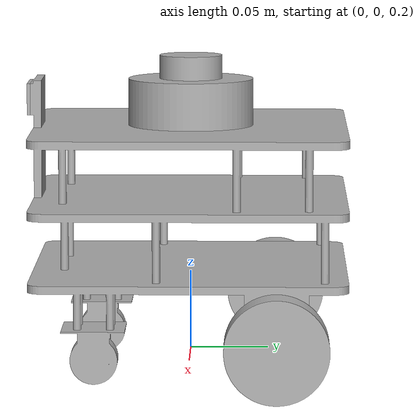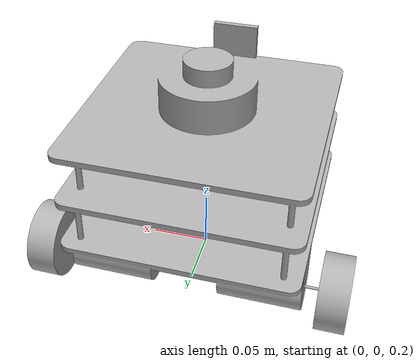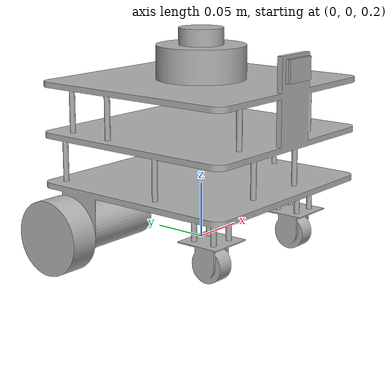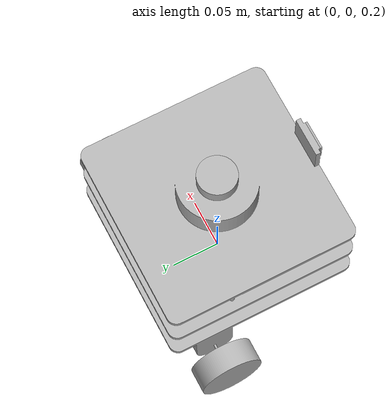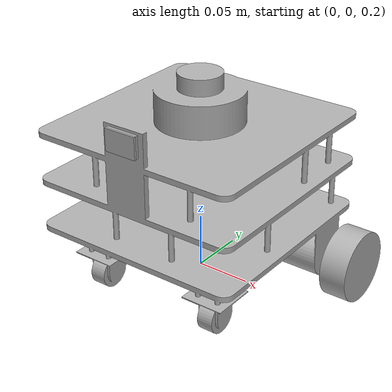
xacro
<?xml version="1.0" ?>
<robot name="bbot" xmlns:xacro="http://www.ros.org/wiki/xacro">

<xacro:include filename="$(find bbot_description)/urdf/materials.xacro" />
<xacro:include filename="$(find bbot_description)/urdf/bbot.trans" />
<xacro:include filename="$(find bbot_description)/urdf/bbot.gazebo" />
<xacro:include filename="$(find bbot_description)/urdf/bbot_plugins.xacro" />

<link name="base_footprint" />

<link name="base_link">
  <inertial>
    <origin xyz="2.1135272500541458e-15 0.0063142431636586584 0.10298851522133046" rpy="0 0 0"/>
    <mass value="1.0491220696897063"/>
    <inertia ixx="0.006007" iyy="0.006187" izz="0.00631" ixy="0.0" iyz="0.000632" ixz="0.0"/>
  </inertial>
  <visual>
    <origin xyz="0 0 0" rpy="0 0 0"/>
    <geometry>
      <mesh filename="file://$(find bbot_description)/meshes/base_link.stl" scale="0.001 0.001 0.001"/>
    </geometry>
    <material name="silver"/>
  </visual>
  <collision>
    <origin xyz="0 0 0" rpy="0 0 0"/>
    <geometry>
      <mesh filename="file://$(find bbot_description)/meshes/base_link.stl" scale="0.001 0.001 0.001"/>
    </geometry>
  </collision>
</link>

<link name="lidar">
  <inertial>
    <origin xyz="0.0 0.0 0.007500000000000034" rpy="0 0 0"/>
    <mass value="0.02686061718819272"/>
    <inertia ixx="3e-06" iyy="3e-06" izz="5e-06" ixy="-0.0" iyz="0.0" ixz="0.0"/>
  </inertial>
  <visual>
    <origin xyz="-0.0 -0.0 -0.1875" rpy="0 0 0"/>
    <geometry>
      <mesh filename="file://$(find bbot_description)/meshes/lidar_1.stl" scale="0.001 0.001 0.001"/>
    </geometry>
    <material name="silver"/>
  </visual>
  <collision>
    <origin xyz="-0.0 -0.0 -0.1875" rpy="0 0 0"/>
    <geometry>
      <mesh filename="file://$(find bbot_description)/meshes/lidar_1.stl" scale="0.001 0.001 0.001"/>
    </geometry>
  </collision>
</link>

<link name="leftwheel">
  <inertial>
    <origin xyz="0.012499999999999997 8.195638681596229e-10 5.66244127975235e-10" rpy="0 0 0"/>
    <mass value="0.11821469543761903"/>
    <inertia ixx="6.2e-05" iyy="3.7e-05" izz="3.7e-05" ixy="-0.0" iyz="0.0" ixz="-0.0"/>
  </inertial>
  <visual>
    <origin xyz="-0.1125 -0.055 -0.0325" rpy="0 0 0"/>
    <geometry>
      <mesh filename="file://$(find bbot_description)/meshes/leftwheel_1.stl" scale="0.001 0.001 0.001"/>
    </geometry>
    <material name="silver"/>
  </visual>
  <collision>
    <origin xyz="-0.1125 -0.055 -0.0325" rpy="0 0 0"/>
    <geometry>
      <mesh filename="file://$(find bbot_description)/meshes/leftwheel_1.stl" scale="0.001 0.001 0.001"/>
    </geometry>
  </collision>
</link>

<link name="rigthwheel">
  <inertial>
    <origin xyz="-0.012499999999999997 8.195638681596229e-10 5.66244127975235e-10" rpy="0 0 0"/>
    <mass value="0.11821469543761906"/>
    <inertia ixx="6.2e-05" iyy="3.7e-05" izz="3.7e-05" ixy="-0.0" iyz="0.0" ixz="0.0"/>
  </inertial>
  <visual>
    <origin xyz="0.1125 -0.055 -0.0325" rpy="0 0 0"/>
    <geometry>
      <mesh filename="file://$(find bbot_description)/meshes/rigthwheel_1.stl" scale="0.001 0.001 0.001"/>
    </geometry>
    <material name="silver"/>
  </visual>
  <collision>
    <origin xyz="0.1125 -0.055 -0.0325" rpy="0 0 0"/>
    <geometry>
      <mesh filename="file://$(find bbot_description)/meshes/rigthwheel_1.stl" scale="0.001 0.001 0.001"/>
    </geometry>
  </collision>
</link>

<link name="camera">
  <inertial>
    <origin xyz="0.0 -0.0010000000000000009 2.6077032477811457e-09" rpy="0 0 0"/>
    <mass value="0.0017100000509619655"/>
    <inertia ixx="0.0" iyy="0.0" izz="0.0" ixy="0.0" iyz="0.0" ixz="0.0"/>
  </inertial>
  <visual>
    <origin xyz="-0.0 0.1025 -0.175" rpy="0 0 0"/>
    <geometry>
      <mesh filename="file://$(find bbot_description)/meshes/camera_1.stl" scale="0.001 0.001 0.001"/>
    </geometry>
    <material name="silver"/>
  </visual>
  <collision>
    <origin xyz="-0.0 0.1025 -0.175" rpy="0 0 0"/>
    <geometry>
      <mesh filename="file://$(find bbot_description)/meshes/camera_1.stl" scale="0.001 0.001 0.001"/>
    </geometry>
  </collision>
</link>

<joint name="base_basefootprint_joint" type="fixed">
  <origin xyz="0.0 0.0 0.1875" rpy="0 0 0"/>
  <parent link="base_footprint"/>
  <child link="base_link"/>
</joint>

<joint name="base_lidar_joint" type="fixed">
  <origin xyz="0.0 0.0 0.1875" rpy="0 0 0"/>
  <parent link="base_link"/>
  <child link="lidar"/>
</joint>

<joint name="base_leftwheel_joint" type="continuous">
  <origin xyz="0.1125 0.055 0.0325" rpy="0 0 0"/>
  <parent link="base_link"/>
  <child link="leftwheel"/>
  <axis xyz="-1.0 0.0 0.0"/>
</joint>

<joint name="base_rightwheel_joint" type="continuous">
  <origin xyz="-0.1125 0.055 0.0325" rpy="0 0 0"/>
  <parent link="base_link"/>
  <child link="rigthwheel"/>
  <axis xyz="-1.0 0.0 0.0"/>
</joint>

<joint name="base_camera_joint" type="fixed">
  <origin xyz="0.0 -0.1025 0.175" rpy="0 0 0"/>
  <parent link="base_link"/>
  <child link="camera"/>
</joint>

</robot>

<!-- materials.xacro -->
<robot name="bbot" xmlns:xacro="http://www.ros.org/wiki/xacro" >

<material name="silver">
  <color rgba="0.700 0.700 0.700 1.000"/>
</material>

</robot>

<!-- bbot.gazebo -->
<robot name="bbot" xmlns:xacro="http://www.ros.org/wiki/xacro" >

<xacro:property name="body_color" value="Gazebo/Silver" />

<gazebo reference="base_link">
  <material>${body_color}</material>
  <mu1>0.2</mu1>
  <mu2>0.2</mu2>
  <self_collide>true</self_collide>
  <gravity>true</gravity>
</gazebo>

<gazebo reference="lidar">
  <material>${body_color}</material>
  <mu1>0.2</mu1>
  <mu2>0.2</mu2>
  <self_collide>true</self_collide>
</gazebo>

<gazebo reference="leftwheel">
  <material>${body_color}</material>
  <mu1>0.2</mu1>
  <mu2>0.2</mu2>
  <self_collide>true</self_collide>
</gazebo>

<gazebo reference="rigthwheel">
  <material>${body_color}</material>
  <mu1>0.2</mu1>
  <mu2>0.2</mu2>
  <self_collide>true</self_collide>
</gazebo>

<gazebo reference="camera">
  <material>${body_color}</material>
  <mu1>0.2</mu1>
  <mu2>0.2</mu2>
  <self_collide>true</self_collide>
</gazebo>

</robot>
